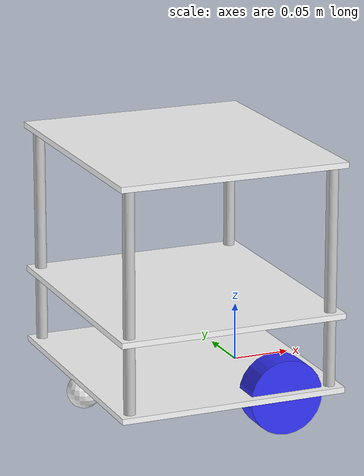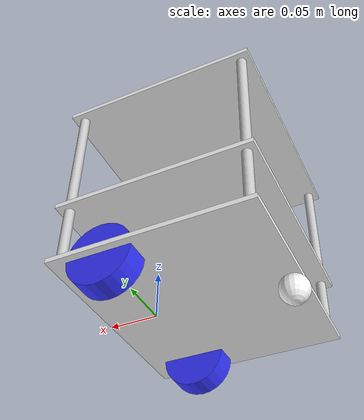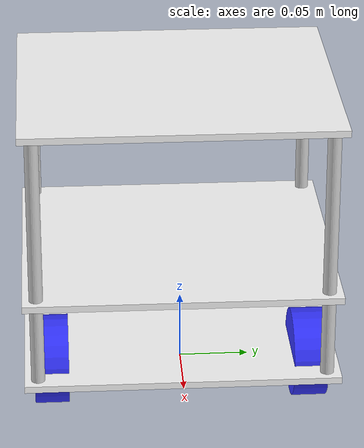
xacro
<?xml version="1.0"?>
<robot xmlns:xacro="http://www.ros.org/wiki/xacro">

  <xacro:include filename="inertial_macros.xacro"/>
  <xacro:property name="my_pi" value="${pi if has_property('pi') else 3.14159}" />

  <material name="black">  <color rgba="0 0 0 1"/>       </material>
  <material name="white">  <color rgba="1 1 1 1"/>       </material>
  <material name="blue">   <color rgba="0.2 0.2 1 1"/>   </material>
  <material name="silver"> <color rgba="0.8 0.8 0.8 1"/> </material>

  <link name="odom"/>
  <link name="base_link"/>

  <joint name="base_footprint_joint" type="fixed">
    <parent link="base_link"/>
    <child link="base_footprint"/>
    <origin xyz="0 0 0" rpy="0 0 0"/>
  </joint>

  <link name="base_footprint"></link>

  <joint name="base_link_joint" type="fixed">
    <parent link="odom"/>
    <child link="base_link"/>
    <origin xyz="0 0 0" rpy="0 0 0"/>
  </joint>

  <!-- ===== Нижняя платформа ===== -->
  <!-- base_link теперь в центре колёс, корпус смещён назад на -0.05 -->
  <joint name="base_plate_joint" type="fixed">
    <parent link="base_link"/>
    <child link="base_plate"/>
    <origin xyz="-0.05 0 0" rpy="0 0 0"/>
  </joint>
  <link name="base_plate">
    <visual>
      <origin xyz="0 0 0.0025" rpy="0 0 0"/>
      <geometry><box size="0.2 0.23 0.005"/></geometry>
      <material name="white"/>
    </visual>
    <collision>
      <origin xyz="0 0 0.0025" rpy="0 0 0"/>
      <geometry><box size="0.2 0.23 0.005"/></geometry>
    </collision>
    <xacro:inertial_box mass="1.5" x="0.2" y="0.23" z="0.005">
      <origin xyz="0 0 0.0025" rpy="0 0 0"/>
    </xacro:inertial_box>
  </link>

  <gazebo reference="base_plate">
    <material>
      Gazebo/White
    </material>
  </gazebo>

  <!-- ===== Четыре стойки ===== -->
  <xacro:macro name="rod" params="name x y material_name:=silver gazebo_color:=Gazebo/Black">
    <joint name="${name}_joint" type="fixed">
      <parent link="base_plate"/>
      <child link="${name}"/>
      <origin xyz="0 0 0" rpy="0 0 0"/>
    </joint>
    <link name="${name}">
      <visual>
        <origin xyz="${x} ${y} 0.1" rpy="0 0 0"/>
        <geometry><cylinder length="0.19" radius="0.005"/></geometry>
        <material name="${material_name}"/>
      </visual>
      <collision>
        <origin xyz="${x} ${y} 0.1" rpy="0 0 0"/>
        <geometry><cylinder length="0.19" radius="0.005"/></geometry>
      </collision>
      <xacro:inertial_cylinder mass="0.05" length="0.19" radius="0.005">
        <origin xyz="${x} ${y} 0.1" rpy="0 0 0"/>
      </xacro:inertial_cylinder>
    </link>
  </xacro:macro>

  <xacro:rod name="rod_front_left"  x=" 0.09" y=" 0.105"/>
  <xacro:rod name="rod_front_right" x=" 0.09" y="-0.105"/>
  <xacro:rod name="rod_rear_left"   x="-0.09" y=" 0.105"/>
  <xacro:rod name="rod_rear_right"  x="-0.09" y="-0.105"/>

  <!-- ===== Колёса: x=0, base_link теперь их центр ===== -->
  <joint name="left_wheel_joint" type="continuous">
    <parent link="base_link"/>
    <child link="left_wheel"/>
    <origin xyz="0 0.095 0" rpy="0 0 0"/>
    <axis xyz="0 1 0"/>
    <limit effort="200.0" velocity="20.0"/>
  </joint>
  <link name="left_wheel">
    <visual>
      <origin xyz="0 0 0" rpy="${pi/2} 0 0"/>
      <geometry><cylinder length="0.025" radius="0.0325"/></geometry>
      <material name="blue"/>
    </visual>
    <collision>
      <origin xyz="0 0 0" rpy="${pi/2} 0 0"/>
      <geometry><cylinder length="0.025" radius="0.0325"/></geometry>
    </collision>
    <xacro:inertial_cylinder mass="1.0" length="0.025" radius="0.0325">
      <origin xyz="0 0 0" rpy="0 0 0"/>
    </xacro:inertial_cylinder>
  </link>

  <gazebo reference="left_wheel">
    <material>
      Gazebo/Blue
    </material>
  </gazebo>

  <joint name="right_wheel_joint" type="continuous">
    <parent link="base_link"/>
    <child link="right_wheel"/>
    <origin xyz="0 -0.095 0" rpy="0 0 0"/>
    <axis xyz="0 1 0"/>
    <limit effort="200.0" velocity="20.0"/>
  </joint>
  <link name="right_wheel">
    <visual>
      <origin xyz="0 0 0" rpy="${pi/2} 0 0"/>
      <geometry><cylinder length="0.025" radius="0.0325"/></geometry>
      <material name="blue"/>
    </visual>
    <collision>
      <origin xyz="0 0 0" rpy="${pi/2} 0 0"/>
      <geometry><cylinder length="0.025" radius="0.0325"/></geometry>
    </collision>
    <xacro:inertial_cylinder mass="1.0" length="0.025" radius="0.0325">
      <origin xyz="0 0 0" rpy="0 0 0"/>
    </xacro:inertial_cylinder>
  </link>

  <gazebo reference="right_wheel">
    <material>
      Gazebo/Blue
    </material>
  </gazebo>

  <!-- ===== Кастер: было x=-0.09, теперь x=-0.14 ===== -->
  <joint name="caster_wheel_joint" type="fixed">
    <parent link="base_link"/>
    <child link="caster_wheel"/>
    <origin xyz="-0.14 0 -0.01" rpy="0 0 0"/>
  </joint>
  <link name="caster_wheel">
    <visual>
      <origin xyz="0 0 0" rpy="0 0 0"/>
      <geometry><sphere radius="0.015"/></geometry>
      <material name="white"/>
    </visual>
    <collision>
      <origin xyz="0 0 0" rpy="0 0 0"/>
      <geometry><sphere radius="0.015"/></geometry>
    </collision>
    <xacro:inertial_sphere mass="0.1" radius="0.015">
      <origin xyz="0 0 0" rpy="0 0 0"/>
    </xacro:inertial_sphere>
  </link>

  <gazebo reference="caster_wheel">
    <material>
      Gazebo/Blue
    </material>
    <mu1>0.01</mu1>
    <mu2>0.01</mu2>
    <kp>1000000.0</kp>
    <kd>1.0</kd>
  </gazebo>

  <!-- ===== Средняя плата электроники ===== -->
  <joint name="electronics_plate_joint" type="fixed">
    <parent link="base_plate"/>
    <child link="electronics_plate"/>
    <origin xyz="0 0 0.065" rpy="0 0 0"/>
  </joint>
  <link name="electronics_plate">
    <visual>
      <origin xyz="0 0 0.0025" rpy="0 0 0"/>
      <geometry><box size="0.2 0.23 0.005"/></geometry>
      <material name="white"/>
    </visual>
    <collision>
      <origin xyz="0 0 0.0025" rpy="0 0 0"/>
      <geometry><box size="0.2 0.23 0.005"/></geometry>
    </collision>
    <xacro:inertial_box mass="0.3" x="0.2" y="0.23" z="0.005">
      <origin xyz="0 0 0.0025" rpy="0 0 0"/>
    </xacro:inertial_box>
  </link>

  <gazebo reference="electronics_plate">
    <material>
      Gazebo/White
    </material>
  </gazebo>

  <!-- ===== Верхняя платформа ===== -->
  <joint name="top_plate_joint" type="fixed">
    <parent link="electronics_plate"/>
    <child link="top_plate"/>
    <origin xyz="0 0 0.130" rpy="0 0 0"/>
  </joint>
  <link name="top_plate">
    <visual>
      <origin xyz="0 0 0.0025" rpy="0 0 0"/>
      <geometry><box size="0.2 0.23 0.005"/></geometry>
      <material name="white"/>
    </visual>
    <collision>
      <origin xyz="0 0 0.0025" rpy="0 0 0"/>
      <geometry><box size="0.2 0.23 0.005"/></geometry>
    </collision>
    <xacro:inertial_box mass="0.8" x="0.2" y="0.23" z="0.005">
      <origin xyz="0 0 0.0025" rpy="0 0 0"/>
    </xacro:inertial_box>
  </link>

  <gazebo reference="top_plate">
    <material>
      Gazebo/White
    </material>
  </gazebo>

</robot>

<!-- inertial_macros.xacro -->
<robot xmlns:xacro="http://www.ros.org/wiki/xacro">

  <!-- Sphere: I = 2/5 * m * r^2 -->
  <xacro:macro name="inertial_sphere" params="mass radius *origin">
    <inertial>
      <xacro:insert_block name="origin"/>
      <mass value="${mass}"/>
      <inertia ixx="${(2/5)*mass*(radius*radius)}" ixy="0" ixz="0"
               iyy="${(2/5)*mass*(radius*radius)}" iyz="0"
               izz="${(2/5)*mass*(radius*radius)}"/>
    </inertial>
  </xacro:macro>

  <!-- Box: Ixx=m(y²+z²)/12, etc. -->
  <xacro:macro name="inertial_box" params="mass x y z *origin">
    <inertial>
      <xacro:insert_block name="origin"/>
      <mass value="${mass}"/>
      <inertia ixx="${(1/12)*mass*(y*y+z*z)}" ixy="0" ixz="0"
               iyy="${(1/12)*mass*(x*x+z*z)}" iyz="0"
               izz="${(1/12)*mass*(x*x+y*y)}"/>
    </inertial>
  </xacro:macro>

  <!-- Cylinder (axis Z): Ixx=Iyy=m(3r²+l²)/12, Izz=mr²/2 -->
  <xacro:macro name="inertial_cylinder" params="mass length radius *origin">
    <inertial>
      <xacro:insert_block name="origin"/>
      <mass value="${mass}"/>
      <inertia ixx="${(1/12)*mass*(3*radius*radius+length*length)}" ixy="0" ixz="0"
               iyy="${(1/12)*mass*(3*radius*radius+length*length)}" iyz="0"
               izz="${(1/2)*mass*(radius*radius)}"/>
    </inertial>
  </xacro:macro>

</robot>
